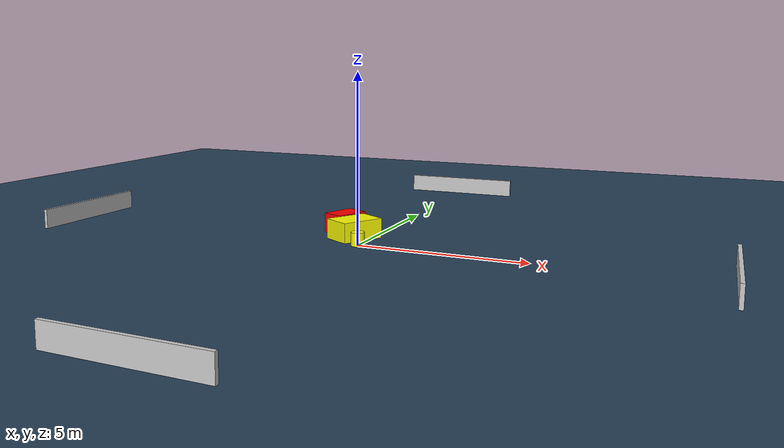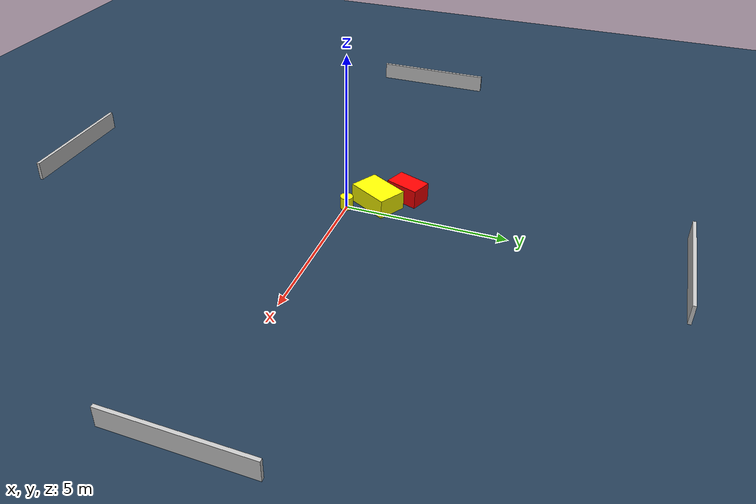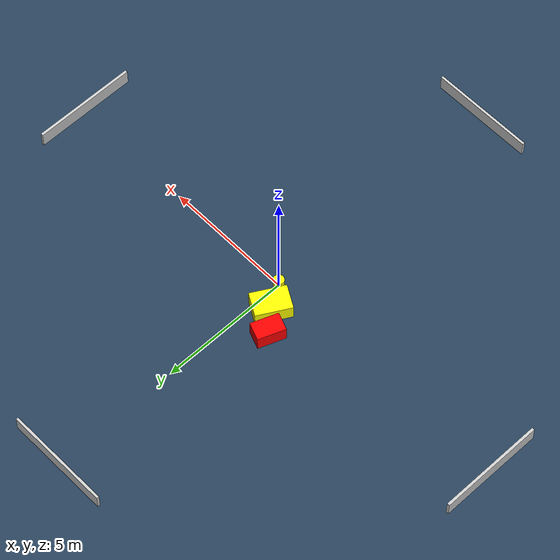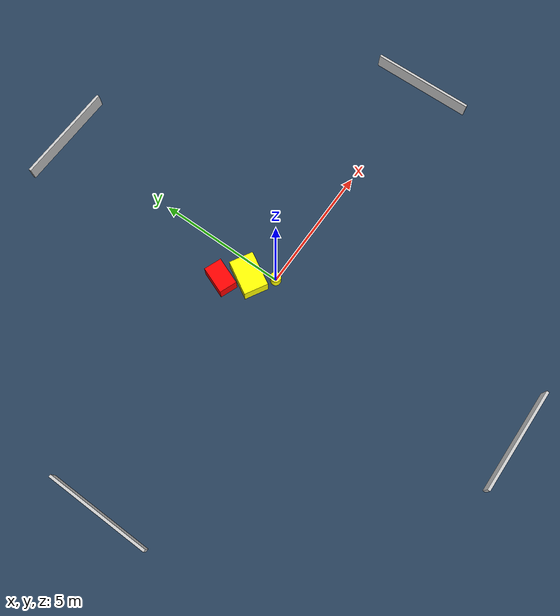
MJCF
<?xml version="1.0" ?>
<mujoco model="generated_environment">
  <option timestep="0.01" integrator="RK4" cone="elliptic"/>
  <default>
    <geom density="1"/>
  </default>
  <asset>
    <texture builtin="gradient" height="3072" name="skybox" rgb1="0.3 0.5 0.7" rgb2="0 0 0" type="skybox" width="512"/>
    <texture builtin="checker" height="300" name="groundplane" rgb1="0.2 0.3 0.4" rgb2="0.1 0.2 0.3" type="2d" width="300"/>
    <material name="groundplane" reflectance="0.2" texrepeat="5 5" texture="groundplane"/>
  </asset>
  <worldbody>
    <light dir="0 0 -1" directional="true" pos="0 0 1.5"/>
    <geom condim="3" friction="0.5 0.005 0.001" material="groundplane" name="floor" pos="0 0 0" size="0 0 0.05" type="plane"/>
    <body name="walls">
      <geom name="wall_1" condim="4" pos="-10.0 0.0 0.3" rgba="0.800000011920929 0.800000011920929 0.800000011920929 1.0" size="0.05 2.0 0.3" type="box"/>
      <geom name="wall_2" condim="4" pos="10.0 0.0 0.3" rgba="0.800000011920929 0.800000011920929 0.800000011920929 1.0" size="0.05 2.0 0.3" type="box"/>
      <geom name="wall_3" condim="4" pos="0.0 -10.0 0.3" rgba="0.800000011920929 0.800000011920929 0.800000011920929 1.0" size="2.0 0.05 0.3" type="box"/>
      <geom name="wall_4" condim="4" pos="0.0 10.0 0.3" rgba="0.800000011920929 0.800000011920929 0.800000011920929 1.0" size="2.0 0.05 0.3" type="box"/>
    </body>
    <body name="robot">
      <joint name="joint_x" type="slide" pos="0 0 0" axis="1 0 0"/>
      <joint name="joint_y" type="slide" pos="0 0 0" axis="0 1 0"/>
      <geom name="robot" type="cylinder" pos="0.0 0.0 0.2" size="0.2 0.2 0.0" mass="5.0" friction="1.0 0.005 0.0001" condim="4" rgba="1.0 1.0 0.0 1.0"/>
    </body>
    <body name="obstacle_1_movable">
      <geom name="obstacle_1_movable" condim="4" pos="-0.5016854385270177 0.8481638673239905 0.3" euler="0 0 60.400761016414734" friction="0.0 0.005 0.001" rgba="1.0 1.0 0.0 1.0" size="0.676624316187685 0.4635252564204857 0.3" type="box" mass="0.1"/>
      <joint type="free"/>
    </body>
    <body name="obstacle_2_static">
      <geom name="obstacle_2_static" condim="4" pos="-1.1684988883470246 1.616830132409147 0.3" euler="0 0 249.0146336562574" friction="0.0 0.005 0.001" rgba="1.0 0.0 0.0 1.0" size="0.5339058440779486 0.34465455425032543 0.3" type="box"/>
    </body>
  </worldbody>
  <actuator>
    <motor name="actuator_x" joint="joint_x" gear="1" ctrlrange="-1 1"/>
    <motor name="actuator_y" joint="joint_y" gear="1" ctrlrange="-1 1"/>
  </actuator>
</mujoco>
